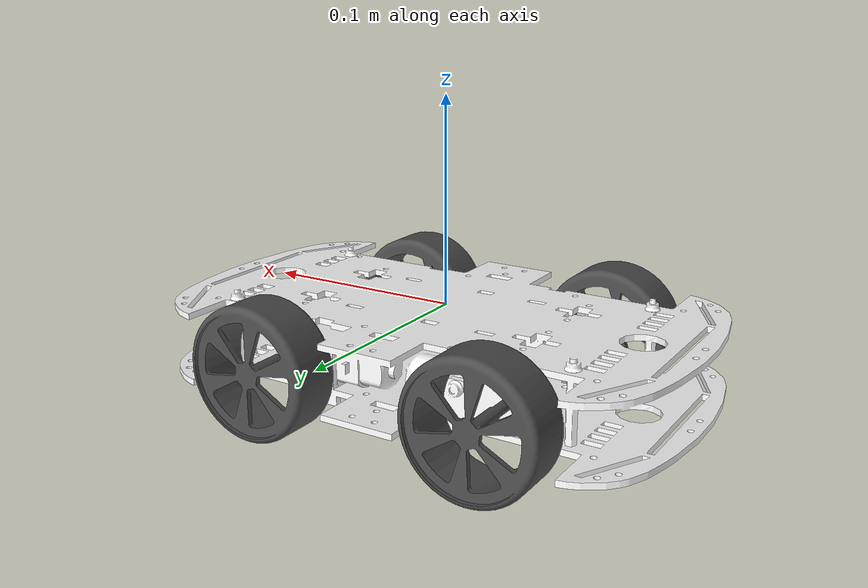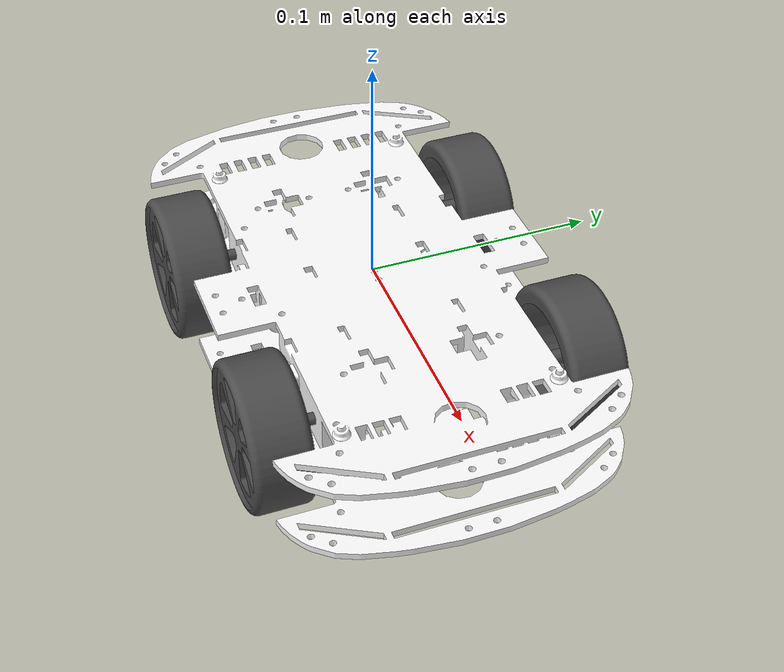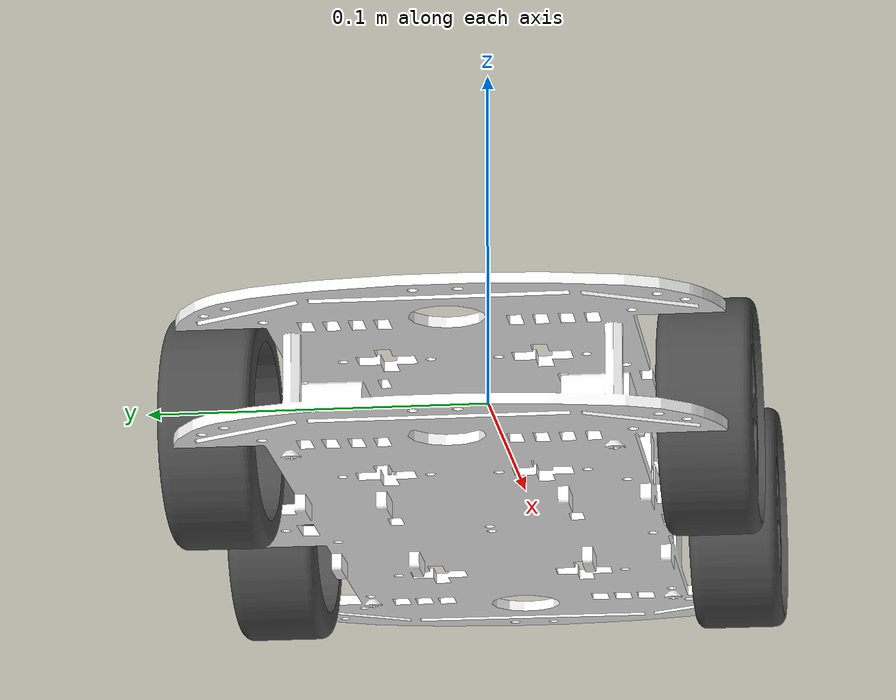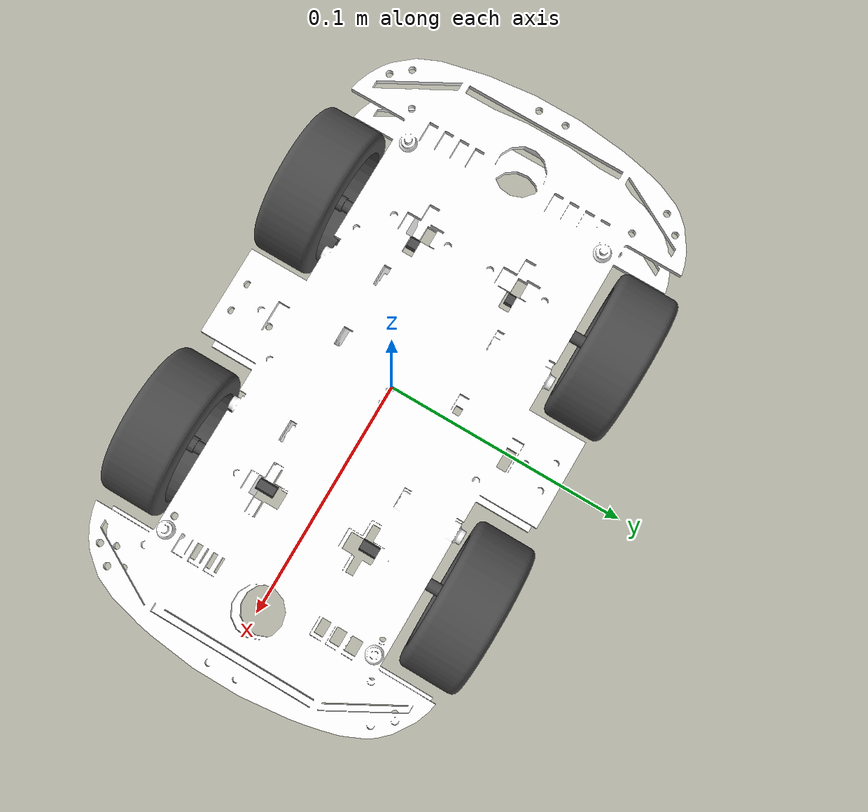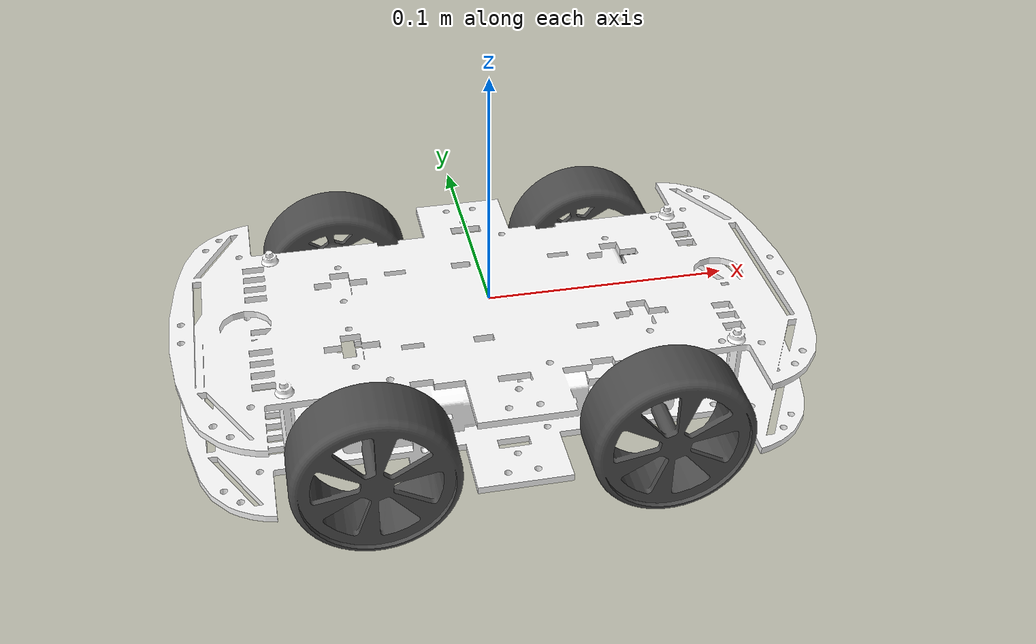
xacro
<?xml version="1.0"?>
<robot
	xmlns:xacro="http://www.ros.org/wiki/xacro"
	name="libro_model">
  <link
    name="base_link">
    <inertial>
      <origin
        xyz="5.68208583529243E-05 -1.08190137895018E-05 -0.0191328128743083"
        rpy="0 0 0" />
      <mass
        value="0.315959634168836" />
      <inertia
        ixx="0.000237187119369315"
        ixy="1.02623528819012E-07"
        ixz="-5.76554239644837E-20"
        iyy="0.000984715228403803"
        iyz="3.46081831405105E-20"
        izz="0.00120943275258583" />
    </inertial>
    <visual>
      <origin
        xyz="0 0 0"
        rpy="0 0 0" />
      <geometry>
        <mesh
          filename="package://libro_model/meshes/base_link.STL" />
      </geometry>
      <material
        name="">
        <color
          rgba="1 1 1 1" />
      </material>
    </visual>
    <collision>
      <origin
        xyz="0 0 0"
        rpy="0 0 0" />
      <geometry>
        <mesh
          filename="package://libro_model/meshes/base_link.STL" />
      </geometry>
    </collision>
  </link>
  <link
    name="right_front_wheel_link">
    <inertial>
      <origin
        xyz="1.38777878078145E-17 0.000536215321318312 3.46944695195361E-18"
        rpy="0 0 0" />
      <mass
        value="0.0420890500835263" />
      <inertia
        ixx="1.69788467809493E-05"
        ixy="-1.07143056154772E-22"
        ixz="3.59209508752315E-22"
        iyy="2.82266239844783E-05"
        iyz="2.23488333501653E-21"
        izz="1.69803313609295E-05" />
    </inertial>
    <visual>
      <origin
        xyz="0 0 0"
        rpy="0 0 0" />
      <geometry>
        <mesh
          filename="package://libro_model/meshes/right_front_wheel_link.STL" />
      </geometry>
      <material
        name="">
        <color
          rgba="0.298039215686275 0.298039215686275 0.298039215686275 1" />
      </material>
    </visual>
    <collision>
      <origin
        xyz="0 0 0"
        rpy="0 0 0" />
      <geometry>
        <mesh
          filename="package://libro_model/meshes/right_front_wheel_link.STL" />
      </geometry>
    </collision>
  </link>
  <joint
    name="right_front_wheel_link"
    type="continuous">
    <origin
      xyz="0.057307 -0.064491 -0.02175"
      rpy="0 0 0" />
    <parent
      link="base_link" />
    <child
      link="right_front_wheel_link" />
    <axis
      xyz="0 1 0" />
    <limit
      lower="-180"
      upper="180"
      effort="0"
      velocity="0" />
  </joint>
  <link
    name="right_rear_wheel_link">
    <inertial>
      <origin
        xyz="1.38777878078145E-17 0.000536215321318284 6.93889390390723E-18"
        rpy="0 0 0" />
      <mass
        value="0.0420890500835264" />
      <inertia
        ixx="1.69788467809493E-05"
        ixy="1.57919887602203E-21"
        ixz="-3.34928854973574E-22"
        iyy="2.82266239844783E-05"
        iyz="3.29921671584904E-22"
        izz="1.69803313609295E-05" />
    </inertial>
    <visual>
      <origin
        xyz="0 0 0"
        rpy="0 0 0" />
      <geometry>
        <mesh
          filename="package://libro_model/meshes/right_rear_wheel_link.STL" />
      </geometry>
      <material
        name="">
        <color
          rgba="0.298039215686275 0.298039215686275 0.298039215686275 1" />
      </material>
    </visual>
    <collision>
      <origin
        xyz="0 0 0"
        rpy="0 0 0" />
      <geometry>
        <mesh
          filename="package://libro_model/meshes/right_rear_wheel_link.STL" />
      </geometry>
    </collision>
  </link>
  <joint
    name="right_rear_wheel_joint"
    type="continuous">
    <origin
      xyz="-0.057693 -0.064454 -0.02175"
      rpy="0 0 0" />
    <parent
      link="base_link" />
    <child
      link="right_rear_wheel_link" />
    <axis
      xyz="0 1 0" />
    <limit
      lower="-180"
      upper="180"
      effort="0"
      velocity="0" />
  </joint>
  <link
    name="left_front_wheel_link">
    <inertial>
      <origin
        xyz="-6.93889390390723E-18 -0.000536215321318298 0"
        rpy="0 0 0" />
      <mass
        value="0.0420890500835263" />
      <inertia
        ixx="1.69788467809493E-05"
        ixy="1.20055989289706E-21"
        ixz="-3.34719610585716E-22"
        iyy="2.82266239844783E-05"
        iyz="-1.25731607683899E-21"
        izz="1.69803313609295E-05" />
    </inertial>
    <visual>
      <origin
        xyz="0 0 0"
        rpy="0 0 0" />
      <geometry>
        <mesh
          filename="package://libro_model/meshes/left_front_wheel_link.STL" />
      </geometry>
      <material
        name="">
        <color
          rgba="0.298039215686275 0.298039215686275 0.298039215686275 1" />
      </material>
    </visual>
    <collision>
      <origin
        xyz="0 0 0"
        rpy="0 0 0" />
      <geometry>
        <mesh
          filename="package://libro_model/meshes/left_front_wheel_link.STL" />
      </geometry>
    </collision>
  </link>
  <joint
    name="left_front_wheel_joint"
    type="continuous">
    <origin
      xyz="0.057307 0.064455 -0.02175"
      rpy="0 0 0" />
    <parent
      link="base_link" />
    <child
      link="left_front_wheel_link" />
    <axis
      xyz="0 1 0" />
    <limit
      lower="-180"
      upper="180"
      effort="0"
      velocity="0" />
  </joint>
  <link
    name="left_rear_wheel_link">
    <inertial>
      <origin
        xyz="4.16333634234434E-17 -0.000536215321318353 -3.46944695195361E-16"
        rpy="0 0 0" />
      <mass
        value="0.0420890500835263" />
      <inertia
        ixx="1.69788496293646E-05"
        ixy="-1.18719665581258E-21"
        ixz="6.49660441239981E-11"
        iyy="2.82266239844783E-05"
        iyz="1.01365580326182E-21"
        izz="1.69803285125142E-05" />
    </inertial>
    <visual>
      <origin
        xyz="0 0 0"
        rpy="0 0 0" />
      <geometry>
        <mesh
          filename="package://libro_model/meshes/left_rear_wheel_link.STL" />
      </geometry>
      <material
        name="">
        <color
          rgba="0.298039215686275 0.298039215686275 0.298039215686275 1" />
      </material>
    </visual>
    <collision>
      <origin
        xyz="0 0 0"
        rpy="0 0 0" />
      <geometry>
        <mesh
          filename="package://libro_model/meshes/left_rear_wheel_link.STL" />
      </geometry>
    </collision>
  </link>
  <joint
    name="left_rear_wheel_joint"
    type="continuous">
    <origin
      xyz="-0.057693 0.064369 -0.02175"
      rpy="0 0 0" />
    <parent
      link="base_link" />
    <child
      link="left_rear_wheel_link" />
    <axis
      xyz="0 1 0" />
    <limit
      lower="-180"
      upper="180"
      effort="0"
      velocity="0" />
  </joint>
</robot>
